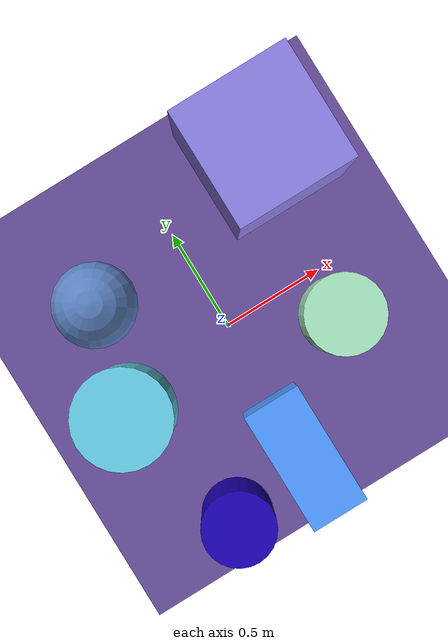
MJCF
<mujoco>
   <asset>
<texture type="skybox" builtin="gradient" rgb1="0.7 0.1 0.4" rgb2="0.6 0.8 0.8" width="256" height="256"/>
<texture name="flat_0" builtin="flat" rgb1="0.4 0.8 0.9" rgb2="0.4 0.8 0.9"  width="200" height="200"/>
<texture name="flat_1" builtin="flat" rgb1="0.1 0.0 0.7" rgb2="0.1 0.0 0.7"  width="200" height="200"/>
<texture name="gradient_2" builtin="gradient" rgb1="0.8 0.9 0.9" rgb2="0.5 0.9 0.6" width="200" height="200"/>
<texture name="checker_3" builtin="checker" type="2d" rgb1="0.4 0.8 0.9" rgb2="0.7 0.2 0.9" width="200" height="200"/>
<texture name="gradient_4" builtin="gradient" rgb1="0.3 0.3 0.6" rgb2="0.4 0.7 0.9" width="200" height="200"/>
<texture name="flat_5" builtin="flat" rgb1="0.3 0.6 1.0" rgb2="0.3 0.6 1.0"  width="200" height="200"/><material name="flat_0_mat" reflectance="0" texture="flat_0" texuniform="true"/>
<material name="flat_1_mat" reflectance="0" texture="flat_1" texuniform="true"/>
<material name="gradient_2_mat" reflectance="0" texture="gradient_2" texuniform="true"/>
<material name="checker_3_mat" reflectance="0" texrepeat="8 8" texture="checker_3" texuniform="false" />
<material name="gradient_4_mat" reflectance="0" texture="gradient_4" texuniform="true"/>
<material name="flat_5_mat" reflectance="0" texture="flat_5" texuniform="true"/>
   </asset>

   <worldbody>
      <light diffuse=".9 .9 .9" pos="0 0 3" dir="0 0 -1"/>
     <geom type="plane" size="1 1 0.1" rgba="0.4 0.3 0.6 1"/>
<geom type="cylinder" pos="-0.61 -0.1 0.21" size="0.23 0.21 0.21" material="flat_0_mat" />
<geom type="cylinder" pos="-0.43 -0.78 0.19" size="0.17 0.19 0.19" material="flat_1_mat" />
<geom type="cylinder" pos="0.47 -0.23 0.15" size="0.19 0.15 0.15" material="gradient_2_mat" />
<geom type="box" pos="0.54 0.61 0.29" size="0.29 0.29 0.29" material="checker_3_mat" />
<geom type="sphere" pos="-0.47 0.4 0.2" size="0.2 0.2 0.2" material="gradient_4_mat" />
<geom type="box" pos="-0.02 -0.69 0.13" size="0.14 0.3 0.13" material="flat_5_mat" /><camera euler="60 0 180" fovy="60" name="camera_a" pos="0 -1.5 1"></camera>   </worldbody>
</mujoco>
